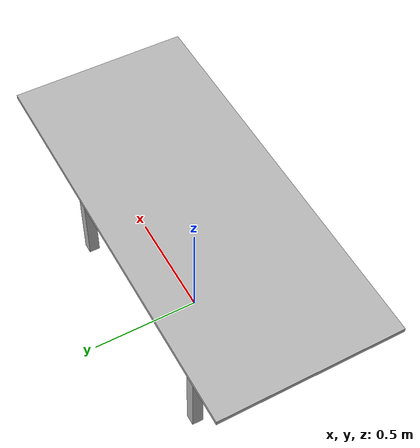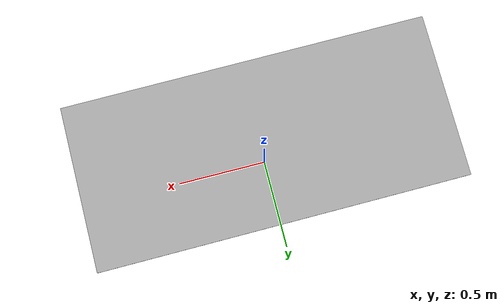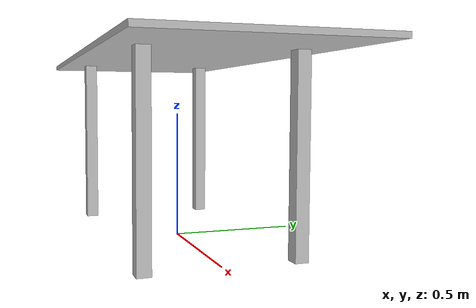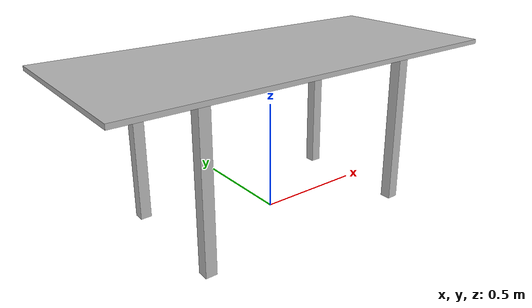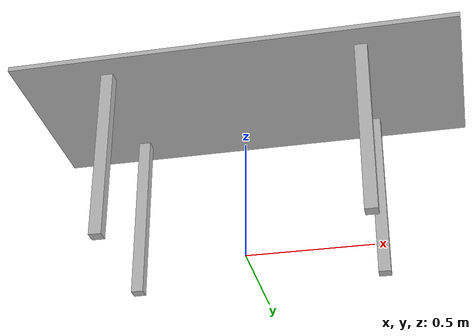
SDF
<?xml version="1.0"?>
<sdf version="1.6">
  <model name="rgo2019/desk">
    <link name="1_link">
      <collision name="1_col">
        <geometry>
          <box>
            <size>1.8 0.8 0.02</size>
          </box>
        </geometry>
      </collision>
      <visual name="1_vis">
        <geometry>
          <box>
            <size>1.8 0.8 0.02</size>
          </box>
        </geometry>
      </visual>
      <pose>0.0 0.0 0.73 0 0 0</pose>
    </link>
    <link name="2_link">
      <collision name="2_col">
        <geometry>
          <box>
            <size>0.05 0.05 0.72</size>
          </box>
        </geometry>
      </collision>
      <visual name="2_vis">
        <geometry>
          <box>
            <size>0.05 0.05 0.72</size>
          </box>
        </geometry>
      </visual>
      <pose>-0.515 -0.275 0.36 0 0 0</pose>
    </link>
    <link name="3_link">
      <collision name="3_col">
        <geometry>
          <box>
            <size>0.05 0.05 0.72</size>
          </box>
        </geometry>
      </collision>
      <visual name="3_vis">
        <geometry>
          <box>
            <size>0.05 0.05 0.72</size>
          </box>
        </geometry>
      </visual>
      <pose>0.515 -0.275 0.36 0 0 0</pose>
    </link>
    <link name="4_link">
      <collision name="4_col">
        <geometry>
          <box>
            <size>0.05 0.05 0.72</size>
          </box>
        </geometry>
      </collision>
      <visual name="4_vis">
        <geometry>
          <box>
            <size>0.05 0.05 0.72</size>
          </box>
        </geometry>
      </visual>
      <pose>-0.515 0.275 0.36 0 0 0</pose>
    </link>
    <link name="5_link">
      <collision name="5_col">
        <geometry>
          <box>
            <size>0.05 0.05 0.72</size>
          </box>
        </geometry>
      </collision>
      <visual name="5_vis">
        <geometry>
          <box>
            <size>0.05 0.05 0.72</size>
          </box>
        </geometry>
      </visual>
      <pose>0.515 0.275 0.36 0 0 0</pose>
    </link>
    <link name="on_top_of">
      <virtual_volume name="on_top_of_vv">
        <geometry>
          <box>
            <size>1.78 0.74 0.25</size>
          </box>
        </geometry>
        <pose>0.0 0.0 0.885 0 0 0</pose>
      </virtual_volume>
    </link>
    <link name="in_front_of">
      <virtual_volume name="in_front_of_vv">
        <geometry>
          <box>
            <size>1.4 0.3 0.01</size>
          </box>
        </geometry>
        <pose>0.0 0.85 0.005 0 0 0</pose>
      </virtual_volume>
    </link>
    <static>true</static>
  </model>
</sdf>
